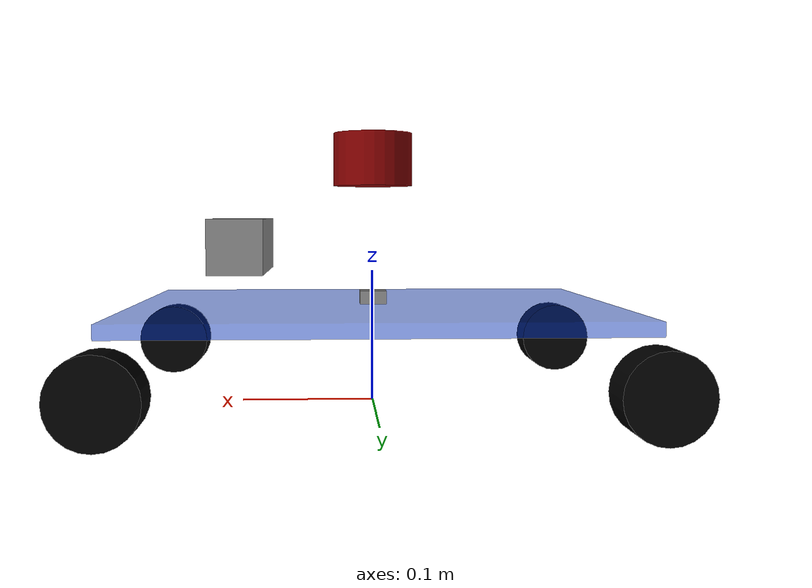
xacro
<?xml version="1.0" encoding="UTF-8"?>
<robot name="four_wheel_chassis"
       xmlns:xacro="http://www.ros.org/wiki/xacro">

  <xacro:property name="base_length"  value="0.36"/>
  <xacro:property name="base_width"   value="0.28"/>
  <xacro:property name="base_height"  value="0.01"/>
  <xacro:property name="base_mass"    value="2.8"/>

  <xacro:property name="wheel_radius" value="0.03"/>
  <xacro:property name="wheel_length" value="0.03"/>
  <xacro:property name="wheel_mass"   value="0.09"/>
  <xacro:property name="wheel_offset_x" value="0.175"/>
  <xacro:property name="wheel_offset_y" value="0.15"/>
  <xacro:property name="wheel_offset_z" value="0.04"/>

  <xacro:property name="lidar_length" value="0.04"/>
  <xacro:property name="lidar_radius" value="0.03"/>
  <xacro:property name="lidar_mass" value="0.1"/>
  <xacro:property name="lidar_offset_x" value="0.0"/>
  <xacro:property name="lidar_offset_y" value="0.0"/>
  <xacro:property name="lidar_offset_z" value="0.115"/>

  <xacro:property name="imu_width" value="0.02"/>
  <xacro:property name="imu_length" value="0.02"/>
  <xacro:property name="imu_height" value="0.01"/>
  <xacro:property name="imu_mass" value="0.01"/>
  <xacro:property name="imu_offset_x" value="0.0"/>
  <xacro:property name="imu_offset_y" value="0.0"/>
  <xacro:property name="imu_offset_z" value="0.01"/>

  <xacro:property name="camera_width" value="0.04"/>
  <xacro:property name="camera_length" value="0.12"/>
  <xacro:property name="camera_height" value="0.04"/>
  <xacro:property name="camera_mass" value="0.1"/>
  <xacro:property name="camera_offset_x" value="0.1"/>
  <xacro:property name="camera_offset_y" value="0.0"/>
  <xacro:property name="camera_offset_z" value="0.05"/>
  <!-- ========================= 包含 ========================= -->

  <xacro:include filename="$(find robot_desc)/urdf/robot.xacro"/>
  <xacro:include filename="$(find robot_desc)/urdf/material.xacro"/>

  <!-- ========================= 主体 ========================= -->
  <link name="base_footprint"/>

  <joint name="base_to_footprint" type="fixed">
    <parent link="base_footprint"/>
    <child link="base_link"/>
    <origin xyz="0.0 0.0 0.07" rpy="0.0 0.0 0.0"/>
  </joint>

  <link name="base_link">
    <visual>
      <geometry><box size="${base_length} ${base_width} ${base_height}"/></geometry>
      <material name="blue"/>
    </visual>
    <collision>
      <geometry><box size="${base_length} ${base_width} ${base_height}"/></geometry>
    </collision>
    <xacro:box_inertia mass="${base_mass}" x="${base_length}" y="${base_width}" z="${base_height}"/>
  </link>

  <!-- 四麦轮 -->
  <xacro:create_wheel name="left_front"  xyz="${wheel_offset_x}  ${wheel_offset_y} -${wheel_offset_z}"/>
  <xacro:create_wheel name="right_front" xyz="${wheel_offset_x} -${wheel_offset_y} -${wheel_offset_z}"/>
  <xacro:create_wheel name="left_rear"   xyz="-${wheel_offset_x}  ${wheel_offset_y} -${wheel_offset_z}"/>
  <xacro:create_wheel name="right_rear"  xyz="-${wheel_offset_x} -${wheel_offset_y} -${wheel_offset_z}"/>

  <!-- 激光 -->
  <link name="laser_frame">
    <visual>
      <geometry><cylinder radius="${lidar_radius}" length="${lidar_length}"/></geometry>
      <material name="red"/>
    </visual>
    <collision>
      <geometry><cylinder radius="${lidar_radius}" length="${lidar_length}"/></geometry>
    </collision>
    <xacro:cyl_inertia mass="${lidar_mass}" r="${lidar_radius}" h="${lidar_length}"/>
  </link>
  <joint name="laser_joint" type="fixed">
    <parent link="base_link"/>
    <child link="laser_frame"/>
    <origin xyz="${lidar_offset_x} ${lidar_offset_y} ${lidar_offset_z}" rpy="0 0 0"/>
  </joint>

  <!-- IMU -->
  <link name="imu_link">
    <visual>
      <geometry><box size="${imu_width} ${imu_length} ${imu_height}"/></geometry>
      <material name="gray"/>
    </visual>
    <collision>
      <geometry><box size="${imu_width} ${imu_length} ${imu_height}"/></geometry>
    </collision>
    <xacro:box_inertia mass="${imu_mass}" x="${imu_width}" y="${imu_length}" z="${imu_height}"/>
  </link>
  <joint name="imu_joint" type="fixed">
    <parent link="base_link"/>
    <child link="imu_link"/>
    <origin xyz="${imu_offset_x} ${imu_offset_y} ${imu_offset_z}" rpy="0 0 0"/>
  </joint>

  <!-- Camera -->
  <link name='camera_link'>
      <visual>
      <geometry><box size="${camera_width} ${camera_length} ${camera_height}"/></geometry>
      <material name="gray"/>
    </visual>
    <collision>
      <geometry><box size="${camera_width} ${camera_length} ${camera_height}"/></geometry>
    </collision>
    <xacro:box_inertia mass="${camera_mass}" x="${camera_width}" y="${camera_length}" z="${camera_height}"/>
  </link>
  <joint name="camera_joint" type="fixed">
    <parent link="base_link"/>
    <child link="camera_link"/>
    <origin xyz="${camera_offset_x} ${camera_offset_y} ${camera_offset_z}" rpy="0 0 0"/>
  </joint>

</robot>

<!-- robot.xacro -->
<robot name="four_wheel_chassis"
       xmlns:xacro="http://www.ros.org/wiki/xacro">

  <!-- ========================= 属性常量 ========================= -->
  <xacro:property name="PI" value="3.1415926535897931"/>

  <!-- ========================= 惯性宏 ========================= -->
  <xacro:macro name="box_inertia" params="mass x y z">
    <inertial>
      <mass value="${mass}"/>
      <inertia ixx="${mass*(y*y+z*z)/12}" ixy="0.0" ixz="0.0"
               iyy="${mass*(x*x+z*z)/12}" iyz="0.0"
               izz="${mass*(x*x+y*y)/12}"/>
    </inertial>
  </xacro:macro>

  <xacro:macro name="cyl_inertia" params="mass r h">
    <inertial>
      <mass value="${mass}"/>
      <inertia ixx="${mass*(3*r*r+h*h)/12}" ixy="0.0" ixz="0.0"
               iyy="${mass*(3*r*r+h*h)/12}" iyz="0.0"
               izz="${mass*r*r/2}"/>
    </inertial>
  </xacro:macro>

  <!-- ========================= 车轮宏 ========================= -->
  <xacro:macro name="create_wheel" params="name xyz rpy:='0 0 0'">
    <link name="${name}_wheel">
      <visual>
        <geometry><cylinder radius="${wheel_radius}" length="${wheel_length}"/></geometry>
        <origin xyz="0 0 0" rpy="${PI/2} 0 0"/>
        <material name="black"/>
      </visual>
      <collision>
        <geometry><cylinder radius="${wheel_radius}" length="${wheel_length}"/></geometry>
        <origin xyz="0 0 0" rpy="${PI/2} 0 0"/>
      </collision>
      <xacro:cyl_inertia mass="${wheel_mass}" r="${wheel_radius}" h="${wheel_length}"/>
    </link>

    <joint name="${name}_wheel_joint" type="continuous">
      <parent link="base_link"/>
      <child link="${name}_wheel"/>
      <origin xyz="${xyz}" rpy="${rpy}"/>
      <axis xyz="0 1 0"/>
    </joint>
  </xacro:macro>

</robot>

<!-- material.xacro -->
<robot name="four_wheel_chassis"
       xmlns:xacro="http://www.ros.org/wiki/xacro">

  <!-- 颜色 -->
  <xacro:property name="base_color" value="0 0.2 0.8 0.5"/>
  <xacro:property name="wheel_color" value="0 0 0 1"/>
  <xacro:property name="lidar_color" value="0.5 0 0 1"/>
  <xacro:property name="imu_color" value="0.5 0.5 0.5 1"/>

  <!-- ========================= 材质宏 ========================= -->
  <material name="blue"><color rgba="${base_color}"/></material>
  <material name="black"><color rgba="${wheel_color}"/></material>
  <material name="red"><color rgba="${lidar_color}"/></material>
  <material name="gray"><color rgba="${imu_color}"/></material>

</robot>
